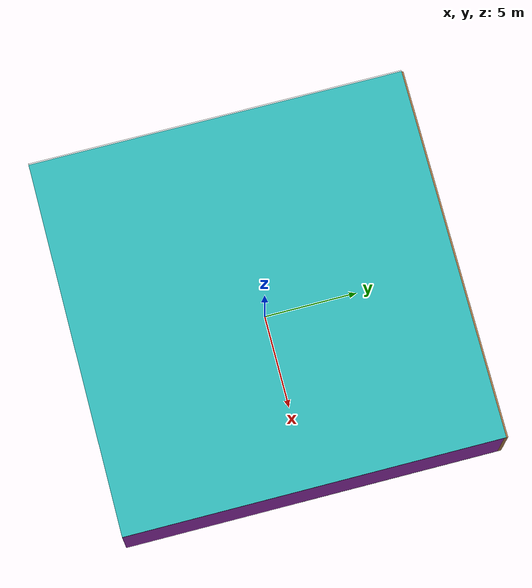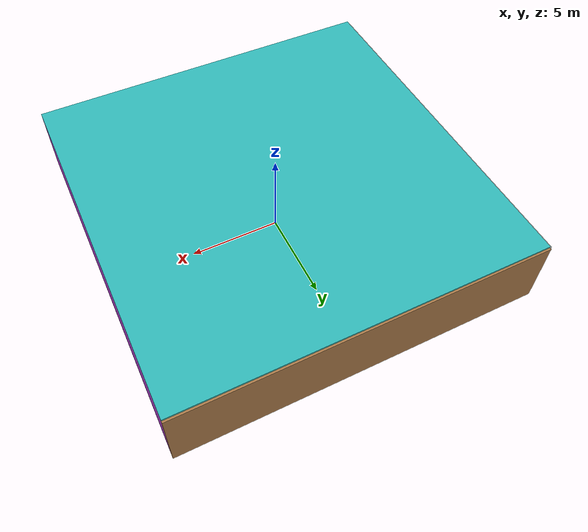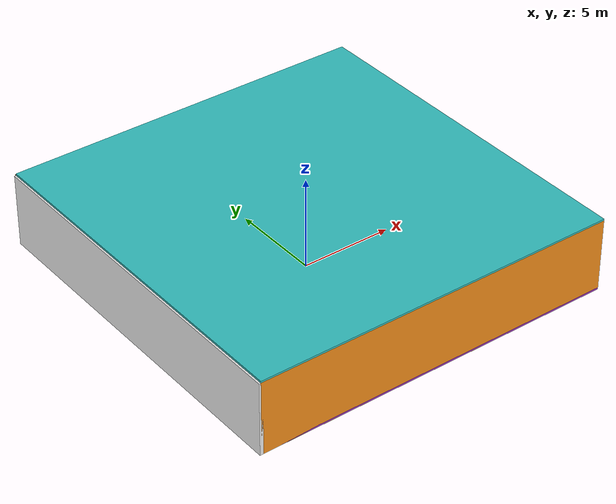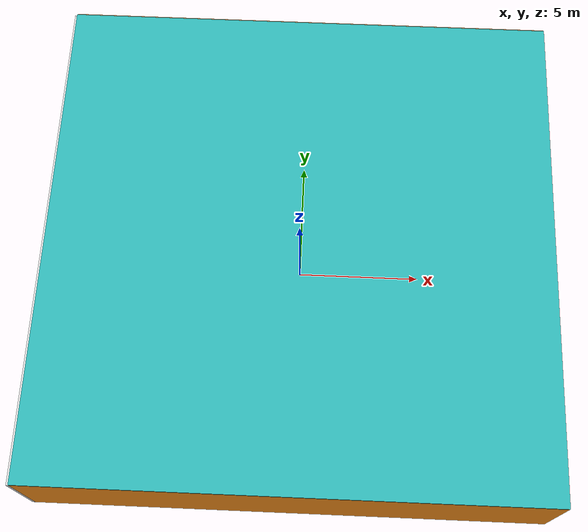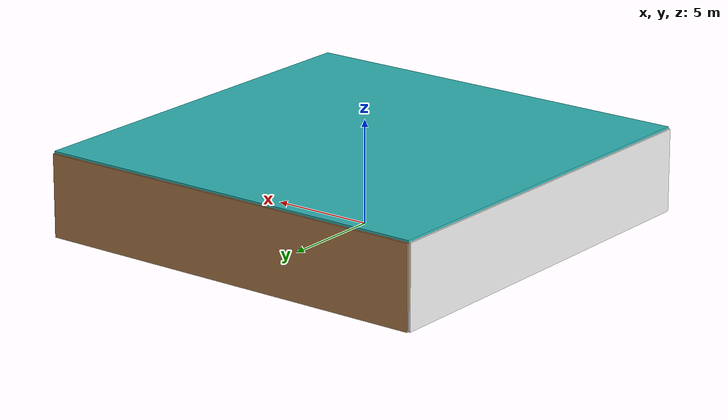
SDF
<sdf version="1.4">
 <world name="default">
  <physics type="ode">
   <max_step_size>0.001</max_step_size>
   <real_time_factor>1</real_time_factor>
   <real_time_update_rate>1000</real_time_update_rate>
   <gravity>0 0 -9.8</gravity>
  </physics>
  <scene><ambient>0.4 0.4 0.4 1</ambient><background>0.7 0.7 0.7 1</background><shadows>1</shadows></scene>
  <model name="Surrounding">
   <static>1</static>
   <link name="Ceiling">
    <collision name="Ceiling_Collision"><geometry><box><size>20 20 0.1</size></box></geometry></collision>
    <visual name="Ceiling_Visual">
     <geometry><box><size>20 20 0.1</size></box></geometry>
     <material>
      <script>
       <uri>file://media/materials/scripts/gazebo.material</uri>
       <name>Gazebo/TurquoiseGlowOutline</name>
      </script>
     </material>
    </visual>
    <pose>0 0 4.05 0 0 0</pose>
   </link>
   <link name="Wall_South">
    <collision name="Wall_South_Collision">
     <geometry><box><size>20 0 4</size></box></geometry>
     <pose>0 0 2 0 -0 0</pose>
    </collision>
    <visual name="Wall_South_Visual">
     <pose>0 0 2 0 -0 0</pose>
     <geometry><box><size>20 0 4</size></box></geometry>
     <material>
      <script><uri>file://media/materials/scripts/gazebo.material</uri><name>Gazebo/Orange</name></script>
     </material>
    </visual>
    <velocity_decay><linear>0</linear><angular>0</angular></velocity_decay>
    <pose>0 -10 0 0 -0 0</pose>
   </link>
   <link name="Wall_East">
    <collision name="Wall_21_Collision">
     <geometry><box><size>20 0 4</size></box></geometry>
     <pose>0 0 2 0 -0 0</pose>
    </collision>
    <visual name="Wall_21_Visual">
     <pose>0 0 2 0 -0 0</pose>
     <geometry><box><size>20 0 4</size></box></geometry>
     <material>
      <script><uri>file://media/materials/scripts/gazebo.material</uri><name>Gazebo/PurpleGlow</name></script>
     </material>
    </visual>
    <velocity_decay><linear>0</linear><angular>0</angular></velocity_decay>
    <pose>10 0 0 0 -0 1.5708</pose>
   </link>
   <link name="Wall_North">
    <collision name="Wall_22_Collision">
     <geometry><box><size>20 0.2 4</size></box></geometry>
     <pose>0 0 2 0 -0 0</pose>
    </collision>
    <visual name="Wall_22_Visual">
     <pose>0 0 2 0 -0 0</pose>
     <geometry><box><size>20 0.2 4</size></box></geometry>
     <material>
      <script><uri>file://media/materials/scripts/gazebo.material</uri><name>Gazebo/WoodPallet</name></script>
     </material>
    </visual>
    <velocity_decay><linear>0</linear><angular>0</angular></velocity_decay>
    <pose>0 10 0 0 -0 0</pose>
   </link>
   <link name="Wall_West">
    <collision name="Wall_23_Collision">
     <geometry><box><size>20 0.2 4</size></box></geometry>
     <pose>0 0 2 0 -0 0</pose>
    </collision>
    <visual name="Wall_23_Visual">
     <pose>0 0 2 0 -0 0</pose>
     <geometry><box><size>20 0.2 4</size></box></geometry>
     <material>
      <script><uri>file://media/materials/scripts/gazebo.material</uri><name>Gazebo/WhiteGlow</name></script>
     </material>
    </visual>
    <velocity_decay><linear>0</linear><angular>0</angular></velocity_decay>
    <pose>-10 0 0 0 0 -1.5708</pose>
   </link>
   <link name="Ground_link">
    <collision name="collision">
     <pose>0 0 .05 0 -0 0</pose>
     <geometry><box><size>20 20 0.1</size></box></geometry>
    </collision>
    <visual name="visual">
     <pose>0 0 .05 0 -0 0</pose>
     <geometry><box><size>20 20 0.1</size></box></geometry>
     <material>
      <script><uri>file://media/materials/scripts/gazebo.material</uri><name>Gazebo/PurpleGlow</name></script>
     </material>
    </visual>
   </link>
   <static>1</static>
  </model>
  <spherical_coordinates>
   <surface_model>EARTH_WGS84</surface_model>
   <latitude_deg>0</latitude_deg>
   <longitude_deg>0</longitude_deg>
   <elevation>0</elevation>
   <heading_deg>0</heading_deg>
  </spherical_coordinates>
  <light name="lightball_0" type="diffuse">
   <diffuse>0.8 0.8 0.8 1</diffuse>
   <specular>0.2 0.2 0.2 1</specular>
   <attenuation>
    <range>100</range>
    <constant>0.7</constant>
    <linear>0.01</linear>
    <quadratic>0.001</quadratic>
   </attenuation>
   <direction>-0.5 0.1 -0.9</direction>
   <pose>5.43745600742 6.3797505092 1.0232860191 0 0 0</pose>
  </light>
  <light name="lightball_1" type="diffuse">
   <diffuse>0.8 0.8 0.8 1</diffuse>
   <specular>0.2 0.2 0.2 1</specular>
   <attenuation>
    <range>100</range>
    <constant>0.7</constant>
    <linear>0.01</linear>
    <quadratic>0.001</quadratic>
   </attenuation>
   <direction>-0.5 0.1 -0.9</direction>
   <pose>9.97175369469 -8.68867706445 3.74810001991 0 0 0</pose>
  </light>
  <light name="lightball_2" type="diffuse">
   <diffuse>0.8 0.8 0.8 1</diffuse>
   <specular>0.2 0.2 0.2 1</specular>
   <attenuation>
    <range>100</range>
    <constant>0.7</constant>
    <linear>0.01</linear>
    <quadratic>0.001</quadratic>
   </attenuation>
   <direction>-0.5 0.1 -0.9</direction>
   <pose>5.38136077861 6.48137210106 2.43346235056 0 0 0</pose>
  </light>
  <light name="lightball_3" type="diffuse">
   <diffuse>0.8 0.8 0.8 1</diffuse>
   <specular>0.2 0.2 0.2 1</specular>
   <attenuation>
    <range>100</range>
    <constant>0.7</constant>
    <linear>0.01</linear>
    <quadratic>0.001</quadratic>
   </attenuation>
   <direction>-0.5 0.1 -0.9</direction>
   <pose>0.684635809267 -1.19665952213 1.6702759033 0 0 0</pose>
  </light>
  <light name="lightball_4" type="diffuse">
   <diffuse>0.8 0.8 0.8 1</diffuse>
   <specular>0.2 0.2 0.2 1</specular>
   <attenuation>
    <range>100</range>
    <constant>0.7</constant>
    <linear>0.01</linear>
    <quadratic>0.001</quadratic>
   </attenuation>
   <direction>-0.5 0.1 -0.9</direction>
   <pose>3.75817376832 4.08962993663 1.95081099767 0 0 0</pose>
  </light>
  <light name="lightball_5" type="diffuse">
   <diffuse>0.8 0.8 0.8 1</diffuse>
   <specular>0.2 0.2 0.2 1</specular>
   <attenuation>
    <range>100</range>
    <constant>0.7</constant>
    <linear>0.01</linear>
    <quadratic>0.001</quadratic>
   </attenuation>
   <direction>-0.5 0.1 -0.9</direction>
   <pose>7.0262998118 7.69036536972 2.76917955496 0 0 0</pose>
  </light>
  <light name="lightball_6" type="diffuse">
   <diffuse>0.8 0.8 0.8 1</diffuse>
   <specular>0.2 0.2 0.2 1</specular>
   <attenuation>
    <range>100</range>
    <constant>0.7</constant>
    <linear>0.01</linear>
    <quadratic>0.001</quadratic>
   </attenuation>
   <direction>-0.5 0.1 -0.9</direction>
   <pose>-7.97948122241 1.69663746703 2.36023771856 0 0 0</pose>
  </light>
  <light name="lightball_7" type="diffuse">
   <diffuse>0.8 0.8 0.8 1</diffuse>
   <specular>0.2 0.2 0.2 1</specular>
   <attenuation>
    <range>100</range>
    <constant>0.7</constant>
    <linear>0.01</linear>
    <quadratic>0.001</quadratic>
   </attenuation>
   <direction>-0.5 0.1 -0.9</direction>
   <pose>9.0705197052 3.2291749147 1.0639311759 0 0 0</pose>
  </light>
  <light name="lightball_8" type="diffuse">
   <diffuse>0.8 0.8 0.8 1</diffuse>
   <specular>0.2 0.2 0.2 1</specular>
   <attenuation>
    <range>100</range>
    <constant>0.7</constant>
    <linear>0.01</linear>
    <quadratic>0.001</quadratic>
   </attenuation>
   <direction>-0.5 0.1 -0.9</direction>
   <pose>-8.42542975128 9.21279810821 3.15298425938 0 0 0</pose>
  </light>
  <light name="lightball_9" type="diffuse">
   <diffuse>0.8 0.8 0.8 1</diffuse>
   <specular>0.2 0.2 0.2 1</specular>
   <attenuation>
    <range>100</range>
    <constant>0.7</constant>
    <linear>0.01</linear>
    <quadratic>0.001</quadratic>
   </attenuation>
   <direction>-0.5 0.1 -0.9</direction>
   <pose>-4.62616755003 -4.01945862001 1.90679508782 0 0 0</pose>
  </light>
  <light name="lightball_10" type="diffuse">
   <diffuse>0.8 0.8 0.8 1</diffuse>
   <specular>0.2 0.2 0.2 1</specular>
   <attenuation>
    <range>100</range>
    <constant>0.7</constant>
    <linear>0.01</linear>
    <quadratic>0.001</quadratic>
   </attenuation>
   <direction>-0.5 0.1 -0.9</direction>
   <pose>-9.72766548831 8.13302356372 1.29653298304 0 0 0</pose>
  </light>
  <light name="lightball_11" type="diffuse">
   <diffuse>0.8 0.8 0.8 1</diffuse>
   <specular>0.2 0.2 0.2 1</specular>
   <attenuation>
    <range>100</range>
    <constant>0.7</constant>
    <linear>0.01</linear>
    <quadratic>0.001</quadratic>
   </attenuation>
   <direction>-0.5 0.1 -0.9</direction>
   <pose>-2.23353641871 -2.71658884479 1.61492721241 0 0 0</pose>
  </light>
  <include>
   <uri>model://robocup_3Dsim_goal</uri>
   <pose>-7.85815464274 -1.83584585322 0 0 0 0.521985760199</pose>
  </include>
  <include><uri>model://table</uri><pose>-2.22354416376 -7.57392546567 0 0 0 1.17229714772</pose></include>
  <include><uri>model://cabinet</uri><pose>-1.12692002419 0.801204660426 0 0 0 1.2983335215</pose></include>
  <include><uri>model://table</uri><pose>-2.03903422961 5.08543819109 0 0 0 2.35539357911</pose></include>
  <include>
   <uri>model://textured_shapes</uri>
   <pose>-0.995490523254 6.95612604678 0 0 0 2.0588538662</pose>
  </include>
  <include>
   <uri>model://robocup_3Dsim_goal</uri>
   <pose>4.94879140527 2.29193133575 0 0 0 0.260053347771</pose>
  </include>
 </world>
</sdf>

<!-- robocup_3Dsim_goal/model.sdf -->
<sdf version="1.5">
  <model name="robocup_3d_goal">
    <static>true</static>
    <link name="left_post">
      <pose>0 1.05 0.45 0 0 0</pose>
      <collision name="collision">
        <geometry>
          <cylinder>
            <radius>0.05</radius>
            <length>0.9</length>
          </cylinder>
        </geometry>
      </collision>
      <visual name="visual">
        <geometry>
          <cylinder>
            <radius>0.05</radius>
            <length>0.9</length>
          </cylinder>
        </geometry>
        <material>
          <script>
            <uri>file://media/materials/scripts/gazebo.material</uri>
            <name>Gazebo/ZincYellow</name>
          </script>
        </material>
      </visual>
    </link>
    <link name="left_support_horiz_lower">
      <pose>0.30 1.05 0.01 0 0 0</pose>
      <collision name="collision">
        <geometry>
          <box>
            <size>0.50 0.02 0.02</size>
          </box>
        </geometry>
      </collision>
      <visual name="visual">
        <geometry>
          <box>
            <size>0.50 0.02 0.02</size>
          </box>
        </geometry>
        <material>
          <script>
            <uri>file://media/materials/scripts/gazebo.material</uri>
            <name>Gazebo/White</name>
          </script>
        </material>
      </visual>
    </link>
    <link name="left_support_horiz_upper">
      <pose>0.30 1.05 0.79 0 0 0</pose>
      <collision name="collision">
        <geometry>
          <box>
            <size>0.50 0.02 0.02</size>
          </box>
        </geometry>
      </collision>
      <visual name="visual">
        <geometry>
          <box>
            <size>0.50 0.02 0.02</size>
          </box>
        </geometry>
        <material>
          <script>
            <uri>file://media/materials/scripts/gazebo.material</uri>
            <name>Gazebo/White</name>
          </script>
        </material>
      </visual>
    </link>
    <link name="left_support_vertical">
      <pose>0.56 1.05 0.4 0 1.5708 0</pose>
      <collision name="collision">
        <geometry>
          <box>
            <size>0.80 0.02 0.02</size>
          </box>
        </geometry>
      </collision>
      <visual name="visual">
        <geometry>
          <box>
            <size>0.80 0.02 0.02</size>
          </box>
        </geometry>
        <material>
          <script>
            <uri>file://media/materials/scripts/gazebo.material</uri>
            <name>Gazebo/White</name>
          </script>
        </material>
      </visual>
    </link>
    <link name="right_support_horiz_lower">
      <pose>0.30 -1.05 0.01 0 0 0</pose>
      <collision name="collision">
        <geometry>
          <box>
            <size>0.50 0.02 0.02</size>
          </box>
        </geometry>
      </collision>
      <visual name="visual">
        <geometry>
          <box>
            <size>0.50 0.02 0.02</size>
          </box>
        </geometry>
        <material>
          <script>
            <uri>file://media/materials/scripts/gazebo.material</uri>
            <name>Gazebo/White</name>
          </script>
        </material>
      </visual>
    </link>
    <link name="right_support_horiz_upper">
      <pose>0.30 -1.05 0.79 0 0 0</pose>
      <collision name="collision">
        <geometry>
          <box>
            <size>0.50 0.02 0.02</size>
          </box>
        </geometry>
      </collision>
      <visual name="visual">
        <geometry>
          <box>
            <size>0.50 0.02 0.02</size>
          </box>
        </geometry>
        <material>
          <script>
            <uri>file://media/materials/scripts/gazebo.material</uri>
            <name>Gazebo/White</name>
          </script>
        </material>
      </visual>
    </link>
    <link name="right_support_vertical">
      <pose>0.56 -1.05 0.4 0 1.5708 0</pose>
      <collision name="collision">
        <geometry>
          <box>
            <size>0.80 0.02 0.02</size>
          </box>
        </geometry>
      </collision>
      <visual name="visual">
        <geometry>
          <box>
            <size>0.80 0.02 0.02</size>
          </box>
        </geometry>
        <material>
          <script>
            <uri>file://media/materials/scripts/gazebo.material</uri>
            <name>Gazebo/White</name>
          </script>
        </material>
      </visual>
    </link>
    <link name="center_support_horiz_lower">
      <pose>0.56 0 0.01 0 1.5708 0</pose>
      <collision name="collision">
        <geometry>
          <box>
            <size>0.02 2.08 0.02</size>
          </box>
        </geometry>
      </collision>
      <visual name="visual">
        <geometry>
          <box>
            <size>0.02 2.08 0.02</size>
          </box>
        </geometry>
        <material>
          <script>
            <uri>file://media/materials/scripts/gazebo.material</uri>
            <name>Gazebo/White</name>
          </script>
        </material>
      </visual>
    </link>
    <link name="center_support_horiz_upper">
      <pose>0.56 0 0.79 0 1.5708 0</pose>
      <collision name="collision">
        <geometry>
          <box>
            <size>0.02 2.08 0.02</size>
          </box>
        </geometry>
      </collision>
      <visual name="visual">
        <geometry>
          <box>
            <size>0.02 2.08 0.02</size>
          </box>
        </geometry>
        <material>
          <script>
            <uri>file://media/materials/scripts/gazebo.material</uri>
            <name>Gazebo/White</name>
          </script>
        </material>
      </visual>
    </link>
    <link name="right_post">
      <pose>0 -1.05 0.45 0 0 0</pose>
      <collision name="collision">
        <geometry>
          <cylinder>
            <radius>0.05</radius>
            <length>0.9</length>
          </cylinder>
        </geometry>
      </collision>
      <visual name="visual">
        <geometry>
          <cylinder>
            <radius>0.05</radius>
            <length>0.9</length>
          </cylinder>
        </geometry>
        <material>
          <script>
            <uri>file://media/materials/scripts/gazebo.material</uri>
            <name>Gazebo/ZincYellow</name>
          </script>
        </material>
      </visual>
    </link>
    <link name="crossbar">
      <pose>0 0 0.85 1.57 1.57 0</pose>
      <collision name="collision">
        <geometry>
          <cylinder>
            <radius>0.05</radius>
            <length>2.0</length>
          </cylinder>
        </geometry>
      </collision>
      <visual name="visual">
        <geometry>
          <cylinder>
            <radius>0.05</radius>
            <length>2.0</length>
          </cylinder>
        </geometry>
        <material>
          <script>
            <uri>file://media/materials/scripts/gazebo.material</uri>
            <name>Gazebo/ZincYellow</name>
          </script>
        </material>
      </visual>
    </link>
    <link name="center_net">
      <pose>0.56 0 0.40 0 0 0</pose>
      <collision name="collision">
        <geometry>
          <box>
            <size>0.01 2.1 0.80</size>
          </box>
        </geometry>
      </collision>
      <visual name="visual">
        <geometry>
          <box>
            <size>0.01 2.1 0.80</size>
          </box>
        </geometry>
        <material>
          <script>
            <uri>model://../model_source/models/robocup09_spl_field/materials/scripts/</uri>
            <uri>model://../model_source/models/robocup09_spl_field/materials/textures/</uri>
            <name>RoboCup/Net</name>
          </script>
        </material>
      </visual>
    </link>
    <link name="left_net">
      <pose>0.30 1.05 0.40 0 0 0</pose>
      <collision name="collision">
        <geometry>
          <box>
            <size>0.50 0.01 0.76</size>
          </box>
        </geometry>
      </collision>
      <visual name="visual">
        <geometry>
          <box>
            <size>0.50 0.01 0.76</size>
          </box>
        </geometry>
        <material>
          <script>
            <uri>model://../model_source/models/robocup09_spl_field/materials/scripts/</uri>
            <uri>model://../model_source/models/robocup09_spl_field/materials/textures/</uri>
            <name>RoboCup/Net</name>
          </script>
        </material>
      </visual>
    </link>
    <link name="right_net">
      <pose>0.30 -1.05 0.40 0 0 0</pose>
      <collision name="collision">
        <geometry>
          <box>
            <size>0.50 0.01 0.76</size>
          </box>
        </geometry>
      </collision>
      <visual name="visual">
        <geometry>
          <box>
            <size>0.50 0.01 0.76</size>
          </box>
        </geometry>
        <material>
          <script>
            <uri>model://../model_source/models/robocup09_spl_field/materials/scripts/</uri>
            <uri>model://../model_source/models/robocup09_spl_field/materials/textures/</uri>
            <name>RoboCup/Net</name>
          </script>
        </material>
      </visual>
    </link>
  </model>
</sdf>

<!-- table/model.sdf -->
<sdf version="1.5">
  <model name="table">
    <static>true</static>
    <link name="link">
      <collision name="surface">
        <pose>0 0 1.0 0 0 0</pose>
        <geometry>
          <box>
            <size>1.5 0.8 0.03</size>
          </box>
        </geometry>
        <surface>
          <friction>
            <ode>
              <mu>0.6</mu>
              <mu2>0.6</mu2>
            </ode>
          </friction>
        </surface>
      </collision>
      <visual name="visual1">
        <pose>0 0 1.0 0 0 0</pose>
        <geometry>
          <box>
            <size>1.5 0.8 0.03</size>
          </box>
        </geometry>
        <material>
          <script>
            <uri>model://media/materials/scripts/gazebo.material</uri>
            <name>Gazebo/Wood</name>
          </script>
        </material>
      </visual>
      <collision name="front_left_leg">
        <pose>0.68 0.38 0.5 0 0 0</pose>
        <geometry>
          <cylinder>
            <radius>0.02</radius>
            <length>1.0</length>
          </cylinder>
        </geometry>
      </collision>
      <visual name="front_left_leg">
        <pose>0.68 0.38 0.5 0 0 0</pose>
        <geometry>
          <cylinder>
            <radius>0.02</radius>
            <length>1.0</length>
          </cylinder>
        </geometry>
        <material>
          <script>
            <uri>model://media/materials/scripts/gazebo.material</uri>
            <name>Gazebo/Grey</name>
          </script>
        </material>
      </visual>
      <collision name="front_right_leg">
        <pose>0.68 -0.38 0.5 0 0 0</pose>
        <geometry>
          <cylinder>
            <radius>0.02</radius>
            <length>1.0</length>
          </cylinder>
        </geometry>
      </collision>
      <visual name="front_right_leg">
        <pose>0.68 -0.38 0.5 0 0 0</pose>
        <geometry>
          <cylinder>
            <radius>0.02</radius>
            <length>1.0</length>
          </cylinder>
        </geometry>
        <material>
          <script>
            <uri>model://media/materials/scripts/gazebo.material</uri>
            <name>Gazebo/Grey</name>
          </script>
        </material>
      </visual>
      <collision name="back_right_leg">
        <pose>-0.68 -0.38 0.5 0 0 0</pose>
        <geometry>
          <cylinder>
            <radius>0.02</radius>
            <length>1.0</length>
          </cylinder>
        </geometry>
      </collision>
      <visual name="back_right_leg">
        <pose>-0.68 -0.38 0.5 0 0 0</pose>
        <geometry>
          <cylinder>
            <radius>0.02</radius>
            <length>1.0</length>
          </cylinder>
        </geometry>
        <material>
          <script>
            <uri>model://media/materials/scripts/gazebo.material</uri>
            <name>Gazebo/Grey</name>
          </script>
        </material>
      </visual>
      <collision name="back_left_leg">
        <pose>-0.68 0.38 0.5 0 0 0</pose>
        <geometry>
          <cylinder>
            <radius>0.02</radius>
            <length>1.0</length>
          </cylinder>
        </geometry>
      </collision>
      <visual name="back_left_leg">
        <pose>-0.68 0.38 0.5 0 0 0</pose>
        <geometry>
          <cylinder>
            <radius>0.02</radius>
            <length>1.0</length>
          </cylinder>
        </geometry>
        <material>
          <script>
            <uri>model://media/materials/scripts/gazebo.material</uri>
            <name>Gazebo/Grey</name>
          </script>
        </material>
      </visual>
    </link>
  </model>
</sdf>

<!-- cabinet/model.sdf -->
<sdf version="1.5">
  <model name="cabinet">
    <static>true</static>
    <link name="cabinet_bottom_plate">
      <inertial>
        <pose>0 0 -1 0 0 0</pose>
        <inertia>
          <ixx>2.050000</ixx>
          <ixy>0</ixy>
          <ixz>0</ixz>
          <iyy>2.050000</iyy>
          <iyz>0</iyz>
          <izz>2.050000</izz>
        </inertia>
        <mass>25.000000</mass>
      </inertial>
      <collision name="cabinet_bottom_plate_geom">
        <pose>0 0 0.010000 0 0 0</pose>
        <geometry>
          <box>
            <size>0.450000 0.450000 0.020000</size>
          </box>
        </geometry>
      </collision>
      <visual name="cabinet_bottom_plate_geom_visual">
        <pose>0 0 0.010000 0 0 0</pose>
        <geometry>
          <box>
            <size>0.450000 0.450000 0.020000</size>
          </box>
        </geometry>
        <material>
          <script>
            <uri>model://media/materials/scripts/gazebo.material</uri>
            <name>Gazebo/Wood</name>
          </script>
        </material>
      </visual>
      <collision name="cabinet_bottom_plate_geom_cabinet_back_plate">
        <pose>0.235000 0 0.510000 0 0 0</pose>
        <geometry>
          <box>
            <size>0.020000 0.450000 1.020000</size>
          </box>
        </geometry>
      </collision>
      <visual name="cabinet_bottom_plate_geom_cabinet_back_plate_visual">
        <pose>0.235000 0 0.510000 0 0 0</pose>
        <geometry>
          <box>
            <size>0.020000 0.450000 1.020000</size>
          </box>
        </geometry>
        <material>
          <script>
            <uri>model://media/materials/scripts/gazebo.material</uri>
            <name>Gazebo/Wood</name>
          </script>
        </material>
      </visual>
      <collision name="cabinet_bottom_plate_geom_cabinet_left_plate">
        <pose>0 0.235000 0.510000 0 0 0</pose>
        <geometry>
          <box>
            <size>0.450000 0.020000 1.020000</size>
          </box>
        </geometry>
      </collision>
      <visual name="cabinet_bottom_plate_geom_cabinet_left_plate_visual">
        <pose>0 0.235000 0.510000 0 0 0</pose>
        <geometry>
          <box>
            <size>0.450000 0.020000 1.020000</size>
          </box>
        </geometry>
        <material>
          <script>
            <uri>model://media/materials/scripts/gazebo.material</uri>
            <name>Gazebo/Wood</name>
          </script>
        </material>
      </visual>
      <collision name="cabinet_bottom_plate_geom_cabinet_middle_plate">
        <pose>0 0 0.510000 0 0 0</pose>
        <geometry>
          <box>
            <size>0.450000 0.450000 0.020000</size>
          </box>
        </geometry>
      </collision>
      <visual name="cabinet_bottom_plate_geom_cabinet_middle_plate_visual">
        <pose>0 0 0.510000 0 0 0</pose>
        <geometry>
          <box>
            <size>0.450000 0.450000 0.020000</size>
          </box>
        </geometry>
        <material>
          <script>
            <uri>model://media/materials/scripts/gazebo.material</uri>
            <name>Gazebo/Wood</name>
          </script>
        </material>
      </visual>
      <collision name="cabinet_bottom_plate_geom_cabinet_right_plate">
        <pose>0 -0.235000 0.510000 0 0 0</pose>
        <geometry>
          <box>
            <size>0.450000 0.020000 1.020000</size>
          </box>
        </geometry>
      </collision>
      <visual name="cabinet_bottom_plate_geom_cabinet_right_plate_visual">
        <pose>0 -0.235000 0.510000 0 0 0</pose>
        <geometry>
          <box>
            <size>0.450000 0.020000 1.020000</size>
          </box>
        </geometry>
        <material>
          <script>
            <uri>model://media/materials/scripts/gazebo.material</uri>
            <name>Gazebo/Wood</name>
          </script>
        </material>
      </visual>
      <collision name="cabinet_bottom_plate_geom_cabinet_top_plate">
        <pose>0 0 1.010000 0 0 0</pose>
        <geometry>
          <box>
            <size>0.450000 0.450000 0.020000</size>
          </box>
        </geometry>
      </collision>
      <visual name="cabinet_bottom_plate_geom_cabinet_top_plate_visual">
        <pose>0 0 1.010000 0 0 0</pose>
        <geometry>
          <box>
            <size>0.450000 0.450000 0.020000</size>
          </box>
        </geometry>
        <material>
          <script>
            <uri>model://media/materials/scripts/gazebo.material</uri>
            <name>Gazebo/Wood</name>
          </script>
        </material>
      </visual>
    </link>
  </model>
</sdf>

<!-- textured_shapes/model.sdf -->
<sdf version="1.6">
  <model name="textured_shapes">
    <pose>0 0 0.5 0 0 0</pose>
    <link name="box">
      <pose>0 -1.5 0 0 0 0</pose>
      <collision name="collision">
        <geometry>
          <box>
            <size>1 1 1</size>
          </box>
        </geometry>
      </collision>
      <visual name="visual">
        <geometry>
          <box>
            <size>1 1 1</size>
          </box>
        </geometry>
        <material>
          <script>
            <uri>model://../model_source/models/textured_shapes/materials/scripts</uri>
            <uri>model://../model_source/models/textured_shapes/materials/textures</uri>
            <name>TexturedShape/Squares</name>
          </script>
        </material>
      </visual>
    </link>
    <link name="sphere">
      <collision name="collision">
        <geometry>
          <sphere>
            <radius>0.5</radius>
          </sphere>
        </geometry>
      </collision>
      <visual name="visual">
        <geometry>
          <sphere>
            <radius>0.5</radius>
          </sphere>
        </geometry>
        <material>
          <script>
            <uri>model://../model_source/models/textured_shapes/materials/scripts</uri>
            <uri>model://../model_source/models/textured_shapes/materials/textures</uri>
            <name>TexturedShape/Squares</name>
          </script>
        </material>
      </visual>
    </link>
    <link name="cylinder">
      <pose>0 1.5 0 0 0 0</pose>
      <collision name="collision">
        <geometry>
          <cylinder>
            <radius>0.5</radius>
            <length>1</length>
          </cylinder>
        </geometry>
      </collision>
      <visual name="visual">
        <geometry>
          <cylinder>
            <radius>0.5</radius>
            <length>1</length>
          </cylinder>
        </geometry>
        <material>
          <script>
            <uri>model://../model_source/models/textured_shapes/materials/scripts</uri>
            <uri>model://../model_source/models/textured_shapes/materials/textures</uri>
            <name>TexturedShape/Squares</name>
          </script>
        </material>
      </visual>
    </link>
  </model>
</sdf>
